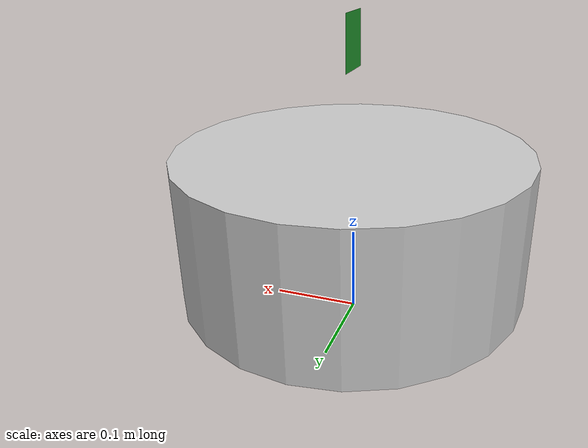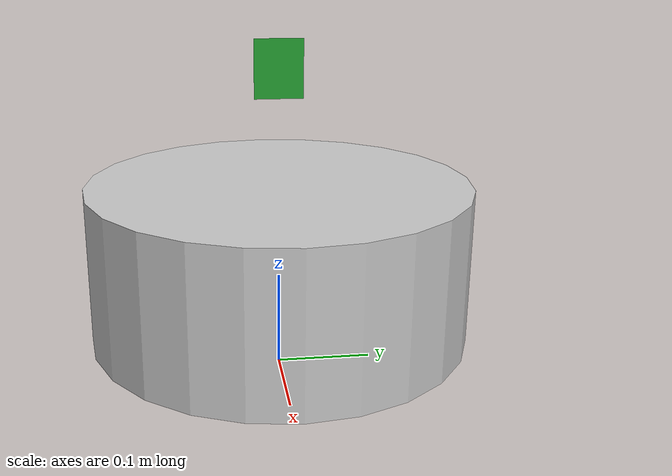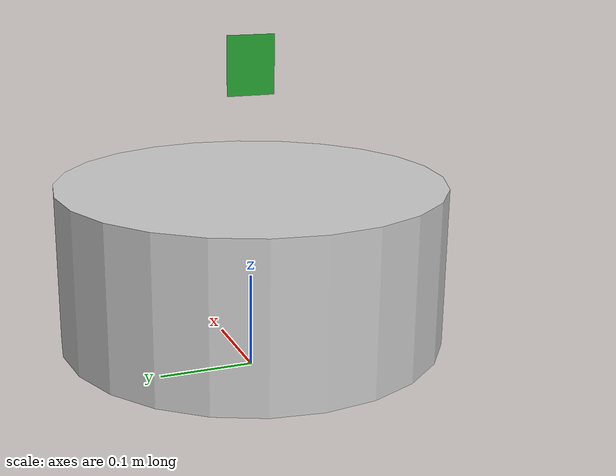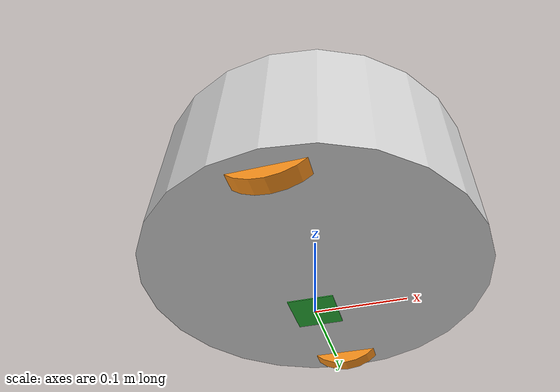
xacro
<?xml version="1.0"?>

<robot name="box_robot" xmlns:xacro="http://ros.org/wiki/xacro">

   <!-- Define a number of dimensions using properties -->
   <property name="torso_offset_x" value="0.0" />
   <property name="torso_offset_y" value="0.0" />
   <property name="torso_offset_z" value="0.23" /> <!--base_height/2+torso_height/2 -->

   <!-- Include all component files -->
   <xacro:include filename="$(find description)/urdf/mobilebase/materials.urdf.xacro" />
   <xacro:include filename="$(find description)/urdf/mobilebase/base.urdf.xacro" />
   <xacro:include filename="$(find description)/urdf/mobilebase/torso.urdf.xacro" />

   <!-- Add the base and wheels -->
   <base name="base" color="Black"/>

   <!-- Attach the torso -->

 <joint name="laser" type="fixed">
    <origin xyz="0.00 0.00 0.20" rpy="0 0 0" />
    <parent link="base_link" />
    <child link="base_laser_link" />
  </joint>

  <link name="base_laser_link">
    <visual>
      <geometry>
        <box size="0.00 0.05 0.06" />
      </geometry>
      <material name="Green" />
    </visual>
    <inertial>
      <mass value="0.000001" />
      <origin xyz="0 0 0" />
      <inertia ixx="0.0001" ixy="0.0" ixz="0.0"
        iyy="0.0001" iyz="0.0"
        izz="0.0001" />
    </inertial>
  </link>
</robot>

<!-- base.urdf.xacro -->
<robot name="base" xmlns:xacro="http://ros.org/wiki/xacro">

  <!-- Define a number of dimensions using properties -->
  <property name="base_length" value="0.165" />
  <property name="base_radius" value="0.20" />
  <property name="wheel_length" value="0.02" />
  <property name="wheel_radius" value="0.060" />
  <property name="wheel_offset_x" value="0" />
  <property name="wheel_offset_y" value="0.17" />
  <property name="wheel_offset_z" value="-0.038" />

  <property name="PI" value="3.1415926" />

  <!-- define a wheel -->
  <macro name="wheel" params="suffix parent reflect color">
    <joint name="${parent}_${suffix}_wheel_joint" type="continuous">
      <axis xyz="0 0 1" />
      <limit effort="100" velocity="100"/>
      <safety_controller k_velocity="10" />
      <origin xyz="${wheel_offset_x} ${reflect*wheel_offset_y} ${wheel_offset_z}" rpy="${reflect*PI/2} 0 0" />
      <parent link="${parent}_link"/>
      <child link="${parent}_${suffix}_wheel_link"/>
    </joint>
    <link name="${parent}_${suffix}_wheel_link">
      <visual>
        <origin xyz="0 0 0" rpy="0 0 0" />
        <geometry>
          <cylinder radius="${wheel_radius}" length="${wheel_length}"/>
        </geometry>
        <material name="${color}" />
      </visual>
    </link>
  </macro>

  <!-- The base xacro macro -->
  <macro name="base" params="name color">
    <link name="${name}_link">

        <visual>
            <origin xyz="0 0 0" rpy="0 0 0"/>
            <geometry>
                <cylinder length="${base_length}" radius="${base_radius}"/>
            </geometry>
            <material name="iRobot/LightGrey"/>
        </visual>
        <collision>
            <origin xyz="0 0 0" rpy="0 0 0"/>
            <geometry>
                <cylinder length="${base_length}" radius="${base_radius}"/>
            </geometry>
        </collision>
    </link>
  </macro>

  <link name="base_footprint">
      <visual>
        <origin xyz="0 0 0" rpy="0 0 0" />
        <geometry>
          <box size="0.05 0.05 0.001" />
        </geometry>
        <material name="TransparentGreen" />
      </visual>
  </link>

  <joint name="base_joint" type="fixed">
    <origin xyz="0 0 ${base_length/2 - wheel_offset_z}" rpy="0 0 0" />
    <parent link="base_footprint"/>
    <child link="base_link" />
  </joint>

   <!-- Add the drive wheels -->
   <wheel parent="base" suffix="l" reflect="1" color="Orange"/>
   <wheel parent="base" suffix="r" reflect="-1" color="Orange"/>

</robot>
